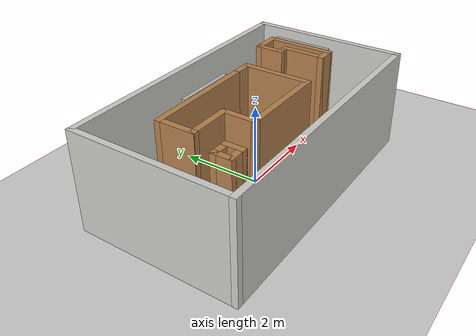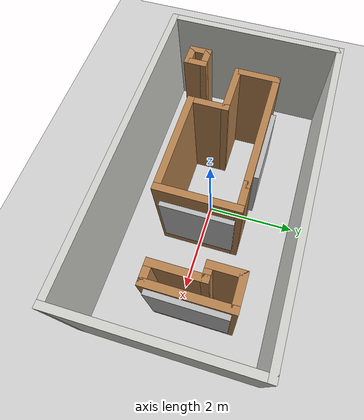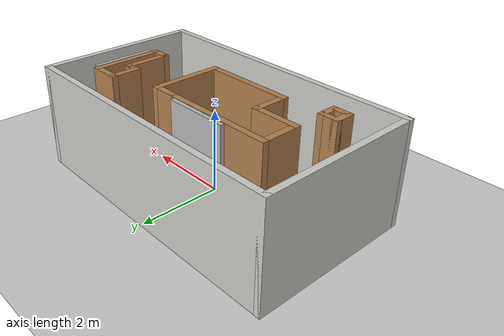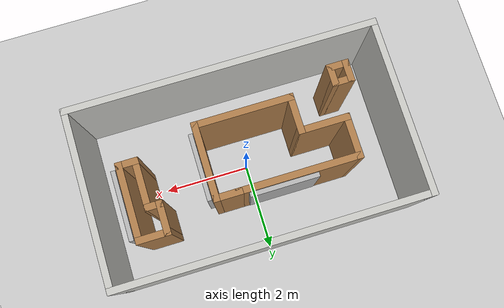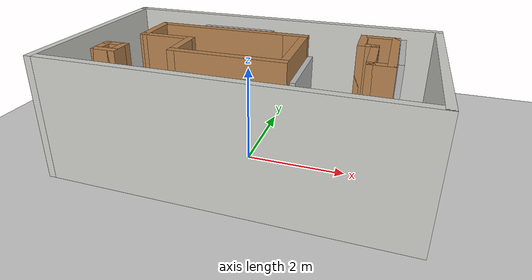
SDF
<sdf version="1.7">
 <world name="default">
  <light name="sun" type="directional">
   <pose>13.575 5.5375 1000 0 -0 0</pose>
   <diffuse>0.8 0.8 0.8 1</diffuse>
   <specular>0.2 0.2 0.2 1</specular>
   <attenuation>
    <range>1000</range>
    <constant>0.9</constant>
    <linear>0.01</linear>
    <quadratic>0.001</quadratic>
   </attenuation>
   <direction>-0.5 0.1 -0.9</direction>
   <spot><inner_angle>0</inner_angle><outer_angle>0</outer_angle><falloff>0</falloff></spot>
  </light>
  <model name="ground_plane">
   <static>1</static>
   <link name="link">
    <collision name="collision">
     <geometry><plane><normal>0 0 1</normal><size>100 100</size></plane></geometry>
     <surface><friction><ode><mu>100</mu><mu2>50</mu2></ode></friction></surface>
    </collision>
    <visual name="visual">
     <cast_shadows>0</cast_shadows>
     <geometry><plane><normal>0 0 1</normal><size>100 100</size></plane></geometry>
     <material>
      <script><uri>file://media/materials/scripts/gazebo.material</uri><name>Gazebo/Grey</name></script>
     </material>
    </visual>
   </link>
  </model>
  <physics type="ode">
   <real_time_update_rate>1000</real_time_update_rate>
   <max_step_size>0.001</max_step_size>
   <real_time_factor>1</real_time_factor>
   <ode>
    <solver>
     <type>quick</type>
     <iters>150</iters>
     <precon_iters>0</precon_iters>
     <sor>1.4</sor>
     <use_dynamic_moi_rescaling>1</use_dynamic_moi_rescaling>
    </solver>
    <constraints>
     <cfm>1e-05</cfm>
     <erp>0.2</erp>
     <contact_max_correcting_vel>2000</contact_max_correcting_vel>
     <contact_surface_layer>0.01</contact_surface_layer>
    </constraints>
   </ode>
  </physics>
  <scene><ambient>0.4 0.4 0.4 1</ambient><background>0.7 0.7 0.7 1</background><shadows>1</shadows></scene>
  <gravity>0 0 -9.8</gravity>
  <magnetic_field>6e-06 2.3e-05 -4.2e-05</magnetic_field>
  <atmosphere type="adiabatic"/>
  <spherical_coordinates>
   <surface_model>EARTH_WGS84</surface_model>
   <latitude_deg>0</latitude_deg>
   <longitude_deg>0</longitude_deg>
   <elevation>0</elevation>
   <heading_deg>0</heading_deg>
  </spherical_coordinates>
  <model name="museum_base">
   <pose>0.010696 0.066931 0 0 -0 0</pose>
   <link name="Wall_10">
    <collision name="Wall_10_Collision">
     <geometry><box><size>1 0.15 2.5</size></box></geometry>
     <pose>0 0 1.25 0 -0 0</pose>
    </collision>
    <visual name="Wall_10_Visual">
     <pose>0 0 1.25 0 -0 0</pose>
     <geometry><box><size>1 0.15 2.5</size></box></geometry>
     <material>
      <script><uri>file://media/materials/scripts/gazebo.material</uri><name>Gazebo/Wood</name></script>
      <ambient>1 1 1 1</ambient>
     </material>
     <meta><layer>0</layer></meta>
    </visual>
    <pose>-2.21453 0.328939 0 0 -0 -1.5708</pose>
   </link>
   <link name="Wall_16">
    <collision name="Wall_16_Collision">
     <geometry><box><size>2.75 0.15 2.5</size></box></geometry>
     <pose>0 0 1.25 0 -0 0</pose>
    </collision>
    <visual name="Wall_16_Visual">
     <pose>0 0 1.25 0 -0 0</pose>
     <geometry><box><size>2.75 0.15 2.5</size></box></geometry>
     <material>
      <script><uri>file://media/materials/scripts/gazebo.material</uri><name>Gazebo/Wood</name></script>
      <ambient>1 1 1 1</ambient>
     </material>
     <meta><layer>0</layer></meta>
    </visual>
    <pose>-0.914529 0.753939 0 0 -0 0</pose>
   </link>
   <link name="Wall_25">
    <collision name="Wall_25_Collision">
     <geometry><box><size>1.75 0.15 2.5</size></box></geometry>
     <pose>0 0 1.25 0 -0 0</pose>
    </collision>
    <visual name="Wall_25_Visual">
     <pose>0 0 1.25 0 -0 0</pose>
     <geometry><box><size>1.75 0.15 2.5</size></box></geometry>
     <material>
      <script><uri>file://media/materials/scripts/gazebo.material</uri><name>Gazebo/Wood</name></script>
      <ambient>1 1 1 1</ambient>
     </material>
     <meta><layer>0</layer></meta>
    </visual>
    <pose>0.885471 -0.046061 0 0 -0 1.5708</pose>
   </link>
   <link name="Wall_26">
    <collision name="Wall_26_Collision">
     <geometry><box><size>0.65 0.15 2.5</size></box></geometry>
     <pose>0 0 1.25 0 -0 0</pose>
    </collision>
    <visual name="Wall_26_Visual">
     <pose>0 0 1.25 0 -0 0</pose>
     <geometry><box><size>0.65 0.15 2.5</size></box></geometry>
     <material>
      <script><uri>file://media/materials/scripts/gazebo.material</uri><name>Gazebo/Wood</name></script>
      <ambient>1 1 1 1</ambient>
     </material>
     <meta><layer>0</layer></meta>
    </visual>
    <pose>0.635471 0.753939 0 0 -0 3.14159</pose>
   </link>
   <link name="Wall_29">
    <collision name="Wall_29_Collision">
     <geometry><box><size>1.75 0.15 2.5</size></box></geometry>
     <pose>0 0 1.25 0 -0 0</pose>
    </collision>
    <visual name="Wall_29_Visual">
     <pose>0 0 1.25 0 -0 0</pose>
     <geometry><box><size>1.75 0.15 2.5</size></box></geometry>
     <material>
      <script><uri>file://media/materials/scripts/gazebo.material</uri><name>Gazebo/Wood</name></script>
      <ambient>1 1 1 1</ambient>
     </material>
     <meta><layer>0</layer></meta>
    </visual>
    <pose>2.618 0.323816 0 0 -0 -1.5708</pose>
   </link>
   <link name="Wall_3">
    <collision name="Wall_3_Collision">
     <geometry><box><size>7 0.15 2.5</size></box></geometry>
     <pose>0 0 1.25 0 -0 0</pose>
    </collision>
    <visual name="Wall_3_Visual">
     <pose>0 0 1.25 0 -0 0</pose>
     <geometry><box><size>7 0.15 2.5</size></box></geometry>
     <material>
      <script><uri>file://media/materials/scripts/gazebo.material</uri><name>Gazebo/CeilingTiled</name></script>
      <ambient>1 1 1 1</ambient>
     </material>
     <meta><layer>0</layer></meta>
    </visual>
    <pose>-0 -1.925 0 0 -0 3.14159</pose>
   </link>
   <link name="Wall_30">
    <collision name="Wall_30_Collision">
     <geometry><box><size>0.5 0.15 2.5</size></box></geometry>
     <pose>0 0 1.25 0 -0 0</pose>
    </collision>
    <visual name="Wall_30_Visual">
     <pose>0 0 1.25 0 -0 0</pose>
     <geometry><box><size>0.5 0.15 2.5</size></box></geometry>
     <material>
      <script><uri>file://media/materials/scripts/gazebo.material</uri><name>Gazebo/Wood</name></script>
      <ambient>1 1 1 1</ambient>
     </material>
     <meta><layer>0</layer></meta>
    </visual>
    <pose>2.443 -0.476184 0 0 -0 3.14159</pose>
   </link>
   <link name="Wall_35">
    <collision name="Wall_35_Collision">
     <geometry><box><size>1.15 0.15 2.5</size></box></geometry>
     <pose>0 0 1.25 0 -0 0</pose>
    </collision>
    <visual name="Wall_35_Visual">
     <pose>0 0 1.25 0 -0 0</pose>
     <geometry><box><size>1.15 0.15 2.5</size></box></geometry>
     <material>
      <script><uri>file://media/materials/scripts/gazebo.material</uri><name>Gazebo/Wood</name></script>
      <ambient>1 1 1 1</ambient>
     </material>
     <meta><layer>0</layer></meta>
    </visual>
    <pose>2.268 0.023816 0 0 -0 1.5708</pose>
   </link>
   <link name="Wall_4">
    <collision name="Wall_4_Collision">
     <geometry><box><size>4 0.15 2.5</size></box></geometry>
     <pose>0 0 1.25 0 -0 0</pose>
    </collision>
    <visual name="Wall_4_Visual">
     <pose>0 0 1.25 0 -0 0</pose>
     <geometry><box><size>4 0.15 2.5</size></box></geometry>
     <material>
      <script><uri>file://media/materials/scripts/gazebo.material</uri><name>Gazebo/CeilingTiled</name></script>
      <ambient>1 1 1 1</ambient>
     </material>
     <meta><layer>0</layer></meta>
    </visual>
    <pose>-3.425 -0 0 0 -0 1.5708</pose>
   </link>
   <link name="Wall_5">
    <collision name="Wall_5_Collision">
     <geometry><box><size>7 0.15 2.5</size></box></geometry>
     <pose>0 0 1.25 0 -0 0</pose>
    </collision>
    <visual name="Wall_5_Visual">
     <pose>0 0 1.25 0 -0 0</pose>
     <geometry><box><size>7 0.15 2.5</size></box></geometry>
     <material>
      <script><uri>file://media/materials/scripts/gazebo.material</uri><name>Gazebo/CeilingTiled</name></script>
      <ambient>1 1 1 1</ambient>
     </material>
     <meta><layer>0</layer></meta>
    </visual>
    <pose>-0 1.925 0 0 -0 0</pose>
   </link>
   <link name="Wall_58">
    <collision name="Wall_58_Collision">
     <geometry><box><size>0.75 0.15 2.5</size></box></geometry>
     <pose>0 0 1.25 0 -0 0</pose>
    </collision>
    <visual name="Wall_58_Visual">
     <pose>0 0 1.25 0 -0 0</pose>
     <geometry><box><size>0.75 0.15 2.5</size></box></geometry>
     <material>
      <script><uri>file://media/materials/scripts/gazebo.material</uri><name>Gazebo/Wood</name></script>
      <ambient>1 1 1 1</ambient>
     </material>
     <meta><layer>0</layer></meta>
    </visual>
    <pose>2.318 1.12382 0 0 -0 3.14159</pose>
   </link>
   <link name="Wall_59">
    <collision name="Wall_59_Collision">
     <geometry><box><size>0.75 0.15 2.5</size></box></geometry>
     <pose>0 0 1.25 0 -0 0</pose>
    </collision>
    <visual name="Wall_59_Visual">
     <pose>0 0 1.25 0 -0 0</pose>
     <geometry><box><size>0.75 0.15 2.5</size></box></geometry>
     <material>
      <script><uri>file://media/materials/scripts/gazebo.material</uri><name>Gazebo/Wood</name></script>
      <ambient>1 1 1 1</ambient>
     </material>
     <meta><layer>0</layer></meta>
    </visual>
    <pose>2.018 0.823816 0 0 -0 -1.5708</pose>
   </link>
   <link name="Wall_6">
    <collision name="Wall_6_Collision">
     <geometry><box><size>4 0.15 2.5</size></box></geometry>
     <pose>0 0 1.25 0 -0 0</pose>
    </collision>
    <visual name="Wall_6_Visual">
     <pose>0 0 1.25 0 -0 0</pose>
     <geometry><box><size>4 0.15 2.5</size></box></geometry>
     <material>
      <script><uri>file://media/materials/scripts/gazebo.material</uri><name>Gazebo/CeilingTiled</name></script>
      <ambient>1 1 1 1</ambient>
     </material>
     <meta><layer>0</layer></meta>
    </visual>
    <pose>3.425 -0 0 0 -0 -1.5708</pose>
   </link>
   <link name="Wall_60">
    <collision name="Wall_60_Collision">
     <geometry><box><size>0.4 0.15 2.5</size></box></geometry>
     <pose>0 0 1.25 0 -0 0</pose>
    </collision>
    <visual name="Wall_60_Visual">
     <pose>0 0 1.25 0 -0 0</pose>
     <geometry><box><size>0.4 0.15 2.5</size></box></geometry>
     <material>
      <script><uri>file://media/materials/scripts/gazebo.material</uri><name>Gazebo/Wood</name></script>
      <ambient>1 1 1 1</ambient>
     </material>
     <meta><layer>0</layer></meta>
    </visual>
    <pose>2.143 0.523816 0 0 -0 0</pose>
   </link>
   <link name="Wall_62">
    <collision name="Wall_62_Collision">
     <geometry><box><size>2.25 0.15 2.5</size></box></geometry>
     <pose>0 0 1.25 0 -0 0</pose>
    </collision>
    <visual name="Wall_62_Visual">
     <pose>0 0 1.25 0 -0 0</pose>
     <geometry><box><size>2.25 0.15 2.5</size></box></geometry>
     <material>
      <script><uri>file://media/materials/scripts/gazebo.material</uri><name>Gazebo/Wood</name></script>
      <ambient>1 1 1 1</ambient>
     </material>
     <meta><layer>0</layer></meta>
    </visual>
    <pose>-0.164529 -0.846061 0 0 -0 3.14159</pose>
   </link>
   <link name="Wall_63">
    <collision name="Wall_63_Collision">
     <geometry><box><size>0.9 0.15 2.5</size></box></geometry>
     <pose>0 0 1.25 0 -0 0</pose>
    </collision>
    <visual name="Wall_63_Visual">
     <pose>0 0 1.25 0 -0 0</pose>
     <geometry><box><size>0.9 0.15 2.5</size></box></geometry>
     <material>
      <script><uri>file://media/materials/scripts/gazebo.material</uri><name>Gazebo/Wood</name></script>
      <ambient>1 1 1 1</ambient>
     </material>
     <meta><layer>0</layer></meta>
    </visual>
    <pose>-1.21453 -0.471061 0 0 -0 1.5708</pose>
   </link>
   <link name="Wall_65">
    <collision name="Wall_65_Collision">
     <geometry><box><size>1.15 0.15 2.5</size></box></geometry>
     <pose>0 0 1.25 0 -0 0</pose>
    </collision>
    <visual name="Wall_65_Visual">
     <pose>0 0 1.25 0 -0 0</pose>
     <geometry><box><size>1.15 0.15 2.5</size></box></geometry>
     <material>
      <script><uri>file://media/materials/scripts/gazebo.material</uri><name>Gazebo/Wood</name></script>
      <ambient>1 1 1 1</ambient>
     </material>
     <meta><layer>0</layer></meta>
    </visual>
    <pose>-1.71453 -0.096061 0 0 -0 0</pose>
   </link>
   <link name="Wall_67">
    <collision name="Wall_67_Collision">
     <geometry><box><size>0.5 0.15 2.5</size></box></geometry>
     <pose>0 0 1.25 0 -0 0</pose>
    </collision>
    <visual name="Wall_67_Visual">
     <pose>0 0 1.25 0 -0 0</pose>
     <geometry><box><size>0.5 0.15 2.5</size></box></geometry>
     <material>
      <script><uri>file://media/materials/scripts/gazebo.material</uri><name>Gazebo/Wood</name></script>
      <ambient>1 1 1 1</ambient>
     </material>
     <meta><layer>0</layer></meta>
    </visual>
    <pose>-2.56414 -1.04568 0 0 -0 -1.5708</pose>
   </link>
   <link name="Wall_68">
    <collision name="Wall_68_Collision">
     <geometry><box><size>0.5 0.15 2.5</size></box></geometry>
     <pose>0 0 1.25 0 -0 0</pose>
    </collision>
    <visual name="Wall_68_Visual">
     <pose>0 0 1.25 0 -0 0</pose>
     <geometry><box><size>0.5 0.15 2.5</size></box></geometry>
     <material>
      <script><uri>file://media/materials/scripts/gazebo.material</uri><name>Gazebo/Wood</name></script>
      <ambient>1 1 1 1</ambient>
     </material>
     <meta><layer>0</layer></meta>
    </visual>
    <pose>-2.38914 -1.22068 0 0 -0 0</pose>
   </link>
   <link name="Wall_69">
    <collision name="Wall_69_Collision">
     <geometry><box><size>0.5 0.15 2.5</size></box></geometry>
     <pose>0 0 1.25 0 -0 0</pose>
    </collision>
    <visual name="Wall_69_Visual">
     <pose>0 0 1.25 0 -0 0</pose>
     <geometry><box><size>0.5 0.15 2.5</size></box></geometry>
     <material>
      <script><uri>file://media/materials/scripts/gazebo.material</uri><name>Gazebo/Wood</name></script>
      <ambient>1 1 1 1</ambient>
     </material>
     <meta><layer>0</layer></meta>
    </visual>
    <pose>-2.21414 -1.04568 0 0 -0 1.5708</pose>
   </link>
   <link name="Wall_70">
    <collision name="Wall_70_Collision">
     <geometry><box><size>0.5 0.15 2.5</size></box></geometry>
     <pose>0 0 1.25 0 -0 0</pose>
    </collision>
    <visual name="Wall_70_Visual">
     <pose>0 0 1.25 0 -0 0</pose>
     <geometry><box><size>0.5 0.15 2.5</size></box></geometry>
     <material>
      <script><uri>file://media/materials/scripts/gazebo.material</uri><name>Gazebo/Wood</name></script>
      <ambient>1 1 1 1</ambient>
     </material>
     <meta><layer>0</layer></meta>
    </visual>
    <pose>-2.38914 -0.87068 0 0 -0 3.14159</pose>
   </link>
   <static>1</static>
  </model>
  <model name="uc_deec_cr_qr_P1">
   <static>1</static>
   <pose>1.04108 0.031391 1.35 0 -0 0</pose>
   <link name="link">
    <collision name="collision">
     <geometry><box><size>0.1 1.5 1.5</size></box></geometry>
     <surface><friction><ode><mu>100</mu><mu2>50</mu2></ode></friction></surface>
    </collision>
    <visual name="visual">
     <geometry><box><size>0.1 1.5 1.5</size></box></geometry>
     <material>
      <script>
       <uri>model://uc_deec_cr_qr_P1/materials/scripts</uri>
       <uri>model://uc_deec_cr_qr_P1/materials/textures</uri>
       <name>uc_deec_cr_qr_P1/Image</name>
      </script>
     </material>
    </visual>
   </link>
  </model>
  <model name="uc_deec_cr_qr_P2">
   <static>1</static>
   <pose>2.76762 0.411979 1.75 0 -0 0</pose>
   <link name="link">
    <collision name="collision">
     <geometry><box><size>0.1 1.5 1.5</size></box></geometry>
     <surface><friction><ode><mu>100</mu><mu2>50</mu2></ode></friction></surface>
    </collision>
    <visual name="visual">
     <geometry><box><size>0.1 1.5 1.5</size></box></geometry>
     <material>
      <script>
       <uri>model://uc_deec_cr_qr_P2/materials/scripts</uri>
       <uri>model://uc_deec_cr_qr_P2/materials/textures</uri>
       <name>uc_deec_cr_qr_P2/Image</name>
      </script>
     </material>
    </visual>
   </link>
  </model>
  <model name="uc_deec_cr_qr_P3">
   <static>1</static>
   <pose>-0.538145 0.956222 1.75 0 -0 1.57</pose>
   <link name="link">
    <collision name="collision">
     <geometry><box><size>0.1 1.5 1.5</size></box></geometry>
     <surface><friction><ode><mu>100</mu><mu2>50</mu2></ode></friction></surface>
    </collision>
    <visual name="visual">
     <geometry><box><size>0.1 1.5 1.5</size></box></geometry>
     <material>
      <script>
       <uri>model://uc_deec_cr_qr_P3/materials/scripts</uri>
       <uri>model://uc_deec_cr_qr_P3/materials/textures</uri>
       <name>uc_deec_cr_qr_P3/Image</name>
      </script>
     </material>
    </visual>
   </link>
  </model>
 </world>
</sdf>
